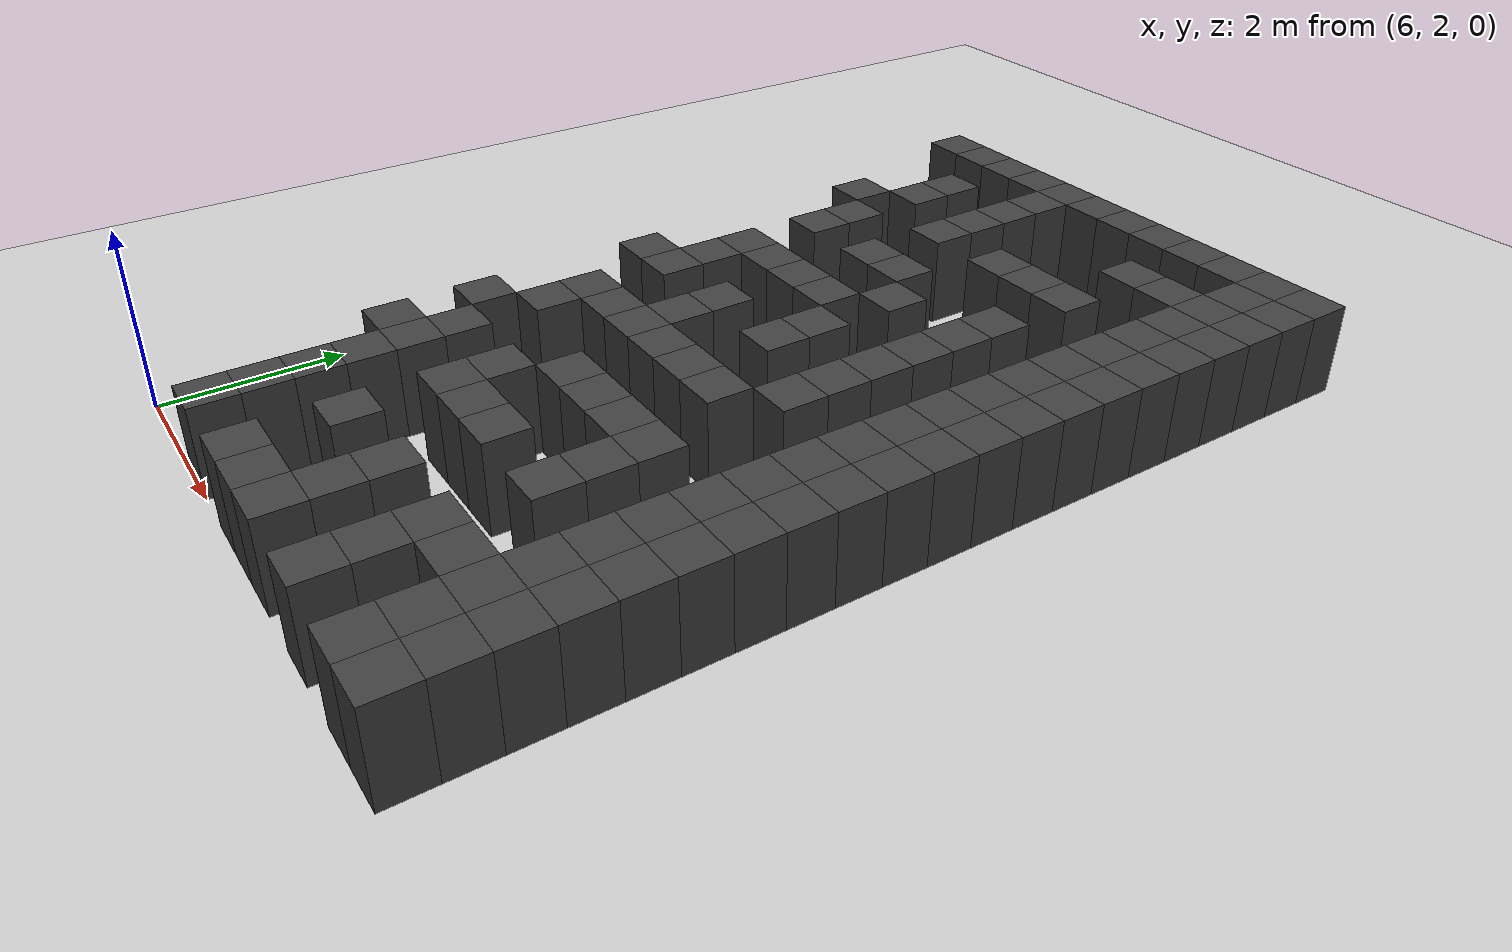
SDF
<sdf version="1.7">
 <world name="map_15293">
  <model name="ground_plane">
   <static>true</static>
   <link name="link">
    <collision name="collision">
     <geometry><plane><normal>0 0 1</normal><size>200 200</size></plane></geometry>
    </collision>
    <visual name="visual">
     <geometry><plane><normal>0 0 1</normal><size>200 200</size></plane></geometry>
     <material><ambient>0.8 0.8 0.8 1</ambient><diffuse>0.8 0.8 0.8 1</diffuse></material>
    </visual>
   </link>
  </model>
  <model name="maze_environment">
   <static>true</static>
   <link name="wall_38">
    <pose>6.750 12.250 0.500 0 0 0</pose>
    <collision name="col"><geometry><box><size>0.5 0.5 1.0</size></box></geometry></collision>
    <visual name="vis">
     <geometry><box><size>0.5 0.5 1.0</size></box></geometry>
     <material><ambient>0.15 0.15 0.15 1</ambient><diffuse>0.25 0.25 0.25 1</diffuse></material>
    </visual>
   </link>
   <link name="wall_39">
    <pose>7.250 12.250 0.500 0 0 0</pose>
    <collision name="col"><geometry><box><size>0.5 0.5 1.0</size></box></geometry></collision>
    <visual name="vis">
     <geometry><box><size>0.5 0.5 1.0</size></box></geometry>
     <material><ambient>0.15 0.15 0.15 1</ambient><diffuse>0.25 0.25 0.25 1</diffuse></material>
    </visual>
   </link>
   <link name="wall_40">
    <pose>7.750 12.250 0.500 0 0 0</pose>
    <collision name="col"><geometry><box><size>0.5 0.5 1.0</size></box></geometry></collision>
    <visual name="vis">
     <geometry><box><size>0.5 0.5 1.0</size></box></geometry>
     <material><ambient>0.15 0.15 0.15 1</ambient><diffuse>0.25 0.25 0.25 1</diffuse></material>
    </visual>
   </link>
   <link name="wall_41">
    <pose>8.250 12.250 0.500 0 0 0</pose>
    <collision name="col"><geometry><box><size>0.5 0.5 1.0</size></box></geometry></collision>
    <visual name="vis">
     <geometry><box><size>0.5 0.5 1.0</size></box></geometry>
     <material><ambient>0.15 0.15 0.15 1</ambient><diffuse>0.25 0.25 0.25 1</diffuse></material>
    </visual>
   </link>
   <link name="wall_42">
    <pose>8.750 12.250 0.500 0 0 0</pose>
    <collision name="col"><geometry><box><size>0.5 0.5 1.0</size></box></geometry></collision>
    <visual name="vis">
     <geometry><box><size>0.5 0.5 1.0</size></box></geometry>
     <material><ambient>0.15 0.15 0.15 1</ambient><diffuse>0.25 0.25 0.25 1</diffuse></material>
    </visual>
   </link>
   <link name="wall_43">
    <pose>9.250 12.250 0.500 0 0 0</pose>
    <collision name="col"><geometry><box><size>0.5 0.5 1.0</size></box></geometry></collision>
    <visual name="vis">
     <geometry><box><size>0.5 0.5 1.0</size></box></geometry>
     <material><ambient>0.15 0.15 0.15 1</ambient><diffuse>0.25 0.25 0.25 1</diffuse></material>
    </visual>
   </link>
   <link name="wall_44">
    <pose>9.750 12.250 0.500 0 0 0</pose>
    <collision name="col"><geometry><box><size>0.5 0.5 1.0</size></box></geometry></collision>
    <visual name="vis">
     <geometry><box><size>0.5 0.5 1.0</size></box></geometry>
     <material><ambient>0.15 0.15 0.15 1</ambient><diffuse>0.25 0.25 0.25 1</diffuse></material>
    </visual>
   </link>
   <link name="wall_45">
    <pose>10.250 12.250 0.500 0 0 0</pose>
    <collision name="col"><geometry><box><size>0.5 0.5 1.0</size></box></geometry></collision>
    <visual name="vis">
     <geometry><box><size>0.5 0.5 1.0</size></box></geometry>
     <material><ambient>0.15 0.15 0.15 1</ambient><diffuse>0.25 0.25 0.25 1</diffuse></material>
    </visual>
   </link>
   <link name="wall_46">
    <pose>10.750 12.250 0.500 0 0 0</pose>
    <collision name="col"><geometry><box><size>0.5 0.5 1.0</size></box></geometry></collision>
    <visual name="vis">
     <geometry><box><size>0.5 0.5 1.0</size></box></geometry>
     <material><ambient>0.15 0.15 0.15 1</ambient><diffuse>0.25 0.25 0.25 1</diffuse></material>
    </visual>
   </link>
   <link name="wall_47">
    <pose>11.250 12.250 0.500 0 0 0</pose>
    <collision name="col"><geometry><box><size>0.5 0.5 1.0</size></box></geometry></collision>
    <visual name="vis">
     <geometry><box><size>0.5 0.5 1.0</size></box></geometry>
     <material><ambient>0.15 0.15 0.15 1</ambient><diffuse>0.25 0.25 0.25 1</diffuse></material>
    </visual>
   </link>
   <link name="wall_48">
    <pose>11.750 12.250 0.500 0 0 0</pose>
    <collision name="col"><geometry><box><size>0.5 0.5 1.0</size></box></geometry></collision>
    <visual name="vis">
     <geometry><box><size>0.5 0.5 1.0</size></box></geometry>
     <material><ambient>0.15 0.15 0.15 1</ambient><diffuse>0.25 0.25 0.25 1</diffuse></material>
    </visual>
   </link>
   <link name="wall_49">
    <pose>12.250 12.250 0.500 0 0 0</pose>
    <collision name="col"><geometry><box><size>0.5 0.5 1.0</size></box></geometry></collision>
    <visual name="vis">
     <geometry><box><size>0.5 0.5 1.0</size></box></geometry>
     <material><ambient>0.15 0.15 0.15 1</ambient><diffuse>0.25 0.25 0.25 1</diffuse></material>
    </visual>
   </link>
   <link name="wall_56">
    <pose>8.750 11.750 0.500 0 0 0</pose>
    <collision name="col"><geometry><box><size>0.5 0.5 1.0</size></box></geometry></collision>
    <visual name="vis">
     <geometry><box><size>0.5 0.5 1.0</size></box></geometry>
     <material><ambient>0.15 0.15 0.15 1</ambient><diffuse>0.25 0.25 0.25 1</diffuse></material>
    </visual>
   </link>
   <link name="wall_57">
    <pose>11.750 11.750 0.500 0 0 0</pose>
    <collision name="col"><geometry><box><size>0.5 0.5 1.0</size></box></geometry></collision>
    <visual name="vis">
     <geometry><box><size>0.5 0.5 1.0</size></box></geometry>
     <material><ambient>0.15 0.15 0.15 1</ambient><diffuse>0.25 0.25 0.25 1</diffuse></material>
    </visual>
   </link>
   <link name="wall_58">
    <pose>12.250 11.750 0.500 0 0 0</pose>
    <collision name="col"><geometry><box><size>0.5 0.5 1.0</size></box></geometry></collision>
    <visual name="vis">
     <geometry><box><size>0.5 0.5 1.0</size></box></geometry>
     <material><ambient>0.15 0.15 0.15 1</ambient><diffuse>0.25 0.25 0.25 1</diffuse></material>
    </visual>
   </link>
   <link name="wall_81">
    <pose>7.750 11.250 0.500 0 0 0</pose>
    <collision name="col"><geometry><box><size>0.5 0.5 1.0</size></box></geometry></collision>
    <visual name="vis">
     <geometry><box><size>0.5 0.5 1.0</size></box></geometry>
     <material><ambient>0.15 0.15 0.15 1</ambient><diffuse>0.25 0.25 0.25 1</diffuse></material>
    </visual>
   </link>
   <link name="wall_82">
    <pose>8.750 11.250 0.500 0 0 0</pose>
    <collision name="col"><geometry><box><size>0.5 0.5 1.0</size></box></geometry></collision>
    <visual name="vis">
     <geometry><box><size>0.5 0.5 1.0</size></box></geometry>
     <material><ambient>0.15 0.15 0.15 1</ambient><diffuse>0.25 0.25 0.25 1</diffuse></material>
    </visual>
   </link>
   <link name="wall_83">
    <pose>10.750 11.250 0.500 0 0 0</pose>
    <collision name="col"><geometry><box><size>0.5 0.5 1.0</size></box></geometry></collision>
    <visual name="vis">
     <geometry><box><size>0.5 0.5 1.0</size></box></geometry>
     <material><ambient>0.15 0.15 0.15 1</ambient><diffuse>0.25 0.25 0.25 1</diffuse></material>
    </visual>
   </link>
   <link name="wall_84">
    <pose>11.250 11.250 0.500 0 0 0</pose>
    <collision name="col"><geometry><box><size>0.5 0.5 1.0</size></box></geometry></collision>
    <visual name="vis">
     <geometry><box><size>0.5 0.5 1.0</size></box></geometry>
     <material><ambient>0.15 0.15 0.15 1</ambient><diffuse>0.25 0.25 0.25 1</diffuse></material>
    </visual>
   </link>
   <link name="wall_85">
    <pose>11.750 11.250 0.500 0 0 0</pose>
    <collision name="col"><geometry><box><size>0.5 0.5 1.0</size></box></geometry></collision>
    <visual name="vis">
     <geometry><box><size>0.5 0.5 1.0</size></box></geometry>
     <material><ambient>0.15 0.15 0.15 1</ambient><diffuse>0.25 0.25 0.25 1</diffuse></material>
    </visual>
   </link>
   <link name="wall_86">
    <pose>12.250 11.250 0.500 0 0 0</pose>
    <collision name="col"><geometry><box><size>0.5 0.5 1.0</size></box></geometry></collision>
    <visual name="vis">
     <geometry><box><size>0.5 0.5 1.0</size></box></geometry>
     <material><ambient>0.15 0.15 0.15 1</ambient><diffuse>0.25 0.25 0.25 1</diffuse></material>
    </visual>
   </link>
   <link name="wall_97">
    <pose>7.750 10.750 0.500 0 0 0</pose>
    <collision name="col"><geometry><box><size>0.5 0.5 1.0</size></box></geometry></collision>
    <visual name="vis">
     <geometry><box><size>0.5 0.5 1.0</size></box></geometry>
     <material><ambient>0.15 0.15 0.15 1</ambient><diffuse>0.25 0.25 0.25 1</diffuse></material>
    </visual>
   </link>
   <link name="wall_98">
    <pose>8.750 10.750 0.500 0 0 0</pose>
    <collision name="col"><geometry><box><size>0.5 0.5 1.0</size></box></geometry></collision>
    <visual name="vis">
     <geometry><box><size>0.5 0.5 1.0</size></box></geometry>
     <material><ambient>0.15 0.15 0.15 1</ambient><diffuse>0.25 0.25 0.25 1</diffuse></material>
    </visual>
   </link>
   <link name="wall_99">
    <pose>11.750 10.750 0.500 0 0 0</pose>
    <collision name="col"><geometry><box><size>0.5 0.5 1.0</size></box></geometry></collision>
    <visual name="vis">
     <geometry><box><size>0.5 0.5 1.0</size></box></geometry>
     <material><ambient>0.15 0.15 0.15 1</ambient><diffuse>0.25 0.25 0.25 1</diffuse></material>
    </visual>
   </link>
   <link name="wall_100">
    <pose>12.250 10.750 0.500 0 0 0</pose>
    <collision name="col"><geometry><box><size>0.5 0.5 1.0</size></box></geometry></collision>
    <visual name="vis">
     <geometry><box><size>0.5 0.5 1.0</size></box></geometry>
     <material><ambient>0.15 0.15 0.15 1</ambient><diffuse>0.25 0.25 0.25 1</diffuse></material>
    </visual>
   </link>
   <link name="wall_127">
    <pose>7.250 10.250 0.500 0 0 0</pose>
    <collision name="col"><geometry><box><size>0.5 0.5 1.0</size></box></geometry></collision>
    <visual name="vis">
     <geometry><box><size>0.5 0.5 1.0</size></box></geometry>
     <material><ambient>0.15 0.15 0.15 1</ambient><diffuse>0.25 0.25 0.25 1</diffuse></material>
    </visual>
   </link>
   <link name="wall_128">
    <pose>8.750 10.250 0.500 0 0 0</pose>
    <collision name="col"><geometry><box><size>0.5 0.5 1.0</size></box></geometry></collision>
    <visual name="vis">
     <geometry><box><size>0.5 0.5 1.0</size></box></geometry>
     <material><ambient>0.15 0.15 0.15 1</ambient><diffuse>0.25 0.25 0.25 1</diffuse></material>
    </visual>
   </link>
   <link name="wall_129">
    <pose>9.750 10.250 0.500 0 0 0</pose>
    <collision name="col"><geometry><box><size>0.5 0.5 1.0</size></box></geometry></collision>
    <visual name="vis">
     <geometry><box><size>0.5 0.5 1.0</size></box></geometry>
     <material><ambient>0.15 0.15 0.15 1</ambient><diffuse>0.25 0.25 0.25 1</diffuse></material>
    </visual>
   </link>
   <link name="wall_130">
    <pose>10.250 10.250 0.500 0 0 0</pose>
    <collision name="col"><geometry><box><size>0.5 0.5 1.0</size></box></geometry></collision>
    <visual name="vis">
     <geometry><box><size>0.5 0.5 1.0</size></box></geometry>
     <material><ambient>0.15 0.15 0.15 1</ambient><diffuse>0.25 0.25 0.25 1</diffuse></material>
    </visual>
   </link>
   <link name="wall_131">
    <pose>10.750 10.250 0.500 0 0 0</pose>
    <collision name="col"><geometry><box><size>0.5 0.5 1.0</size></box></geometry></collision>
    <visual name="vis">
     <geometry><box><size>0.5 0.5 1.0</size></box></geometry>
     <material><ambient>0.15 0.15 0.15 1</ambient><diffuse>0.25 0.25 0.25 1</diffuse></material>
    </visual>
   </link>
   <link name="wall_132">
    <pose>11.750 10.250 0.500 0 0 0</pose>
    <collision name="col"><geometry><box><size>0.5 0.5 1.0</size></box></geometry></collision>
    <visual name="vis">
     <geometry><box><size>0.5 0.5 1.0</size></box></geometry>
     <material><ambient>0.15 0.15 0.15 1</ambient><diffuse>0.25 0.25 0.25 1</diffuse></material>
    </visual>
   </link>
   <link name="wall_133">
    <pose>12.250 10.250 0.500 0 0 0</pose>
    <collision name="col"><geometry><box><size>0.5 0.5 1.0</size></box></geometry></collision>
    <visual name="vis">
     <geometry><box><size>0.5 0.5 1.0</size></box></geometry>
     <material><ambient>0.15 0.15 0.15 1</ambient><diffuse>0.25 0.25 0.25 1</diffuse></material>
    </visual>
   </link>
   <link name="wall_142">
    <pose>7.750 9.750 0.500 0 0 0</pose>
    <collision name="col"><geometry><box><size>0.5 0.5 1.0</size></box></geometry></collision>
    <visual name="vis">
     <geometry><box><size>0.5 0.5 1.0</size></box></geometry>
     <material><ambient>0.15 0.15 0.15 1</ambient><diffuse>0.25 0.25 0.25 1</diffuse></material>
    </visual>
   </link>
   <link name="wall_143">
    <pose>11.750 9.750 0.500 0 0 0</pose>
    <collision name="col"><geometry><box><size>0.5 0.5 1.0</size></box></geometry></collision>
    <visual name="vis">
     <geometry><box><size>0.5 0.5 1.0</size></box></geometry>
     <material><ambient>0.15 0.15 0.15 1</ambient><diffuse>0.25 0.25 0.25 1</diffuse></material>
    </visual>
   </link>
   <link name="wall_144">
    <pose>12.250 9.750 0.500 0 0 0</pose>
    <collision name="col"><geometry><box><size>0.5 0.5 1.0</size></box></geometry></collision>
    <visual name="vis">
     <geometry><box><size>0.5 0.5 1.0</size></box></geometry>
     <material><ambient>0.15 0.15 0.15 1</ambient><diffuse>0.25 0.25 0.25 1</diffuse></material>
    </visual>
   </link>
   <link name="wall_171">
    <pose>7.750 9.250 0.500 0 0 0</pose>
    <collision name="col"><geometry><box><size>0.5 0.5 1.0</size></box></geometry></collision>
    <visual name="vis">
     <geometry><box><size>0.5 0.5 1.0</size></box></geometry>
     <material><ambient>0.15 0.15 0.15 1</ambient><diffuse>0.25 0.25 0.25 1</diffuse></material>
    </visual>
   </link>
   <link name="wall_172">
    <pose>8.750 9.250 0.500 0 0 0</pose>
    <collision name="col"><geometry><box><size>0.5 0.5 1.0</size></box></geometry></collision>
    <visual name="vis">
     <geometry><box><size>0.5 0.5 1.0</size></box></geometry>
     <material><ambient>0.15 0.15 0.15 1</ambient><diffuse>0.25 0.25 0.25 1</diffuse></material>
    </visual>
   </link>
   <link name="wall_173">
    <pose>9.250 9.250 0.500 0 0 0</pose>
    <collision name="col"><geometry><box><size>0.5 0.5 1.0</size></box></geometry></collision>
    <visual name="vis">
     <geometry><box><size>0.5 0.5 1.0</size></box></geometry>
     <material><ambient>0.15 0.15 0.15 1</ambient><diffuse>0.25 0.25 0.25 1</diffuse></material>
    </visual>
   </link>
   <link name="wall_174">
    <pose>10.750 9.250 0.500 0 0 0</pose>
    <collision name="col"><geometry><box><size>0.5 0.5 1.0</size></box></geometry></collision>
    <visual name="vis">
     <geometry><box><size>0.5 0.5 1.0</size></box></geometry>
     <material><ambient>0.15 0.15 0.15 1</ambient><diffuse>0.25 0.25 0.25 1</diffuse></material>
    </visual>
   </link>
   <link name="wall_175">
    <pose>11.750 9.250 0.500 0 0 0</pose>
    <collision name="col"><geometry><box><size>0.5 0.5 1.0</size></box></geometry></collision>
    <visual name="vis">
     <geometry><box><size>0.5 0.5 1.0</size></box></geometry>
     <material><ambient>0.15 0.15 0.15 1</ambient><diffuse>0.25 0.25 0.25 1</diffuse></material>
    </visual>
   </link>
   <link name="wall_176">
    <pose>12.250 9.250 0.500 0 0 0</pose>
    <collision name="col"><geometry><box><size>0.5 0.5 1.0</size></box></geometry></collision>
    <visual name="vis">
     <geometry><box><size>0.5 0.5 1.0</size></box></geometry>
     <material><ambient>0.15 0.15 0.15 1</ambient><diffuse>0.25 0.25 0.25 1</diffuse></material>
    </visual>
   </link>
   <link name="wall_188">
    <pose>9.750 8.750 0.500 0 0 0</pose>
    <collision name="col"><geometry><box><size>0.5 0.5 1.0</size></box></geometry></collision>
    <visual name="vis">
     <geometry><box><size>0.5 0.5 1.0</size></box></geometry>
     <material><ambient>0.15 0.15 0.15 1</ambient><diffuse>0.25 0.25 0.25 1</diffuse></material>
    </visual>
   </link>
   <link name="wall_189">
    <pose>10.750 8.750 0.500 0 0 0</pose>
    <collision name="col"><geometry><box><size>0.5 0.5 1.0</size></box></geometry></collision>
    <visual name="vis">
     <geometry><box><size>0.5 0.5 1.0</size></box></geometry>
     <material><ambient>0.15 0.15 0.15 1</ambient><diffuse>0.25 0.25 0.25 1</diffuse></material>
    </visual>
   </link>
   <link name="wall_190">
    <pose>11.750 8.750 0.500 0 0 0</pose>
    <collision name="col"><geometry><box><size>0.5 0.5 1.0</size></box></geometry></collision>
    <visual name="vis">
     <geometry><box><size>0.5 0.5 1.0</size></box></geometry>
     <material><ambient>0.15 0.15 0.15 1</ambient><diffuse>0.25 0.25 0.25 1</diffuse></material>
    </visual>
   </link>
   <link name="wall_191">
    <pose>12.250 8.750 0.500 0 0 0</pose>
    <collision name="col"><geometry><box><size>0.5 0.5 1.0</size></box></geometry></collision>
    <visual name="vis">
     <geometry><box><size>0.5 0.5 1.0</size></box></geometry>
     <material><ambient>0.15 0.15 0.15 1</ambient><diffuse>0.25 0.25 0.25 1</diffuse></material>
    </visual>
   </link>
   <link name="wall_216">
    <pose>7.750 8.250 0.500 0 0 0</pose>
    <collision name="col"><geometry><box><size>0.5 0.5 1.0</size></box></geometry></collision>
    <visual name="vis">
     <geometry><box><size>0.5 0.5 1.0</size></box></geometry>
     <material><ambient>0.15 0.15 0.15 1</ambient><diffuse>0.25 0.25 0.25 1</diffuse></material>
    </visual>
   </link>
   <link name="wall_217">
    <pose>8.250 8.250 0.500 0 0 0</pose>
    <collision name="col"><geometry><box><size>0.5 0.5 1.0</size></box></geometry></collision>
    <visual name="vis">
     <geometry><box><size>0.5 0.5 1.0</size></box></geometry>
     <material><ambient>0.15 0.15 0.15 1</ambient><diffuse>0.25 0.25 0.25 1</diffuse></material>
    </visual>
   </link>
   <link name="wall_218">
    <pose>8.750 8.250 0.500 0 0 0</pose>
    <collision name="col"><geometry><box><size>0.5 0.5 1.0</size></box></geometry></collision>
    <visual name="vis">
     <geometry><box><size>0.5 0.5 1.0</size></box></geometry>
     <material><ambient>0.15 0.15 0.15 1</ambient><diffuse>0.25 0.25 0.25 1</diffuse></material>
    </visual>
   </link>
   <link name="wall_219">
    <pose>9.250 8.250 0.500 0 0 0</pose>
    <collision name="col"><geometry><box><size>0.5 0.5 1.0</size></box></geometry></collision>
    <visual name="vis">
     <geometry><box><size>0.5 0.5 1.0</size></box></geometry>
     <material><ambient>0.15 0.15 0.15 1</ambient><diffuse>0.25 0.25 0.25 1</diffuse></material>
    </visual>
   </link>
   <link name="wall_220">
    <pose>10.750 8.250 0.500 0 0 0</pose>
    <collision name="col"><geometry><box><size>0.5 0.5 1.0</size></box></geometry></collision>
    <visual name="vis">
     <geometry><box><size>0.5 0.5 1.0</size></box></geometry>
     <material><ambient>0.15 0.15 0.15 1</ambient><diffuse>0.25 0.25 0.25 1</diffuse></material>
    </visual>
   </link>
   <link name="wall_221">
    <pose>11.750 8.250 0.500 0 0 0</pose>
    <collision name="col"><geometry><box><size>0.5 0.5 1.0</size></box></geometry></collision>
    <visual name="vis">
     <geometry><box><size>0.5 0.5 1.0</size></box></geometry>
     <material><ambient>0.15 0.15 0.15 1</ambient><diffuse>0.25 0.25 0.25 1</diffuse></material>
    </visual>
   </link>
   <link name="wall_222">
    <pose>12.250 8.250 0.500 0 0 0</pose>
    <collision name="col"><geometry><box><size>0.5 0.5 1.0</size></box></geometry></collision>
    <visual name="vis">
     <geometry><box><size>0.5 0.5 1.0</size></box></geometry>
     <material><ambient>0.15 0.15 0.15 1</ambient><diffuse>0.25 0.25 0.25 1</diffuse></material>
    </visual>
   </link>
   <link name="wall_234">
    <pose>7.750 7.750 0.500 0 0 0</pose>
    <collision name="col"><geometry><box><size>0.5 0.5 1.0</size></box></geometry></collision>
    <visual name="vis">
     <geometry><box><size>0.5 0.5 1.0</size></box></geometry>
     <material><ambient>0.15 0.15 0.15 1</ambient><diffuse>0.25 0.25 0.25 1</diffuse></material>
    </visual>
   </link>
   <link name="wall_235">
    <pose>9.750 7.750 0.500 0 0 0</pose>
    <collision name="col"><geometry><box><size>0.5 0.5 1.0</size></box></geometry></collision>
    <visual name="vis">
     <geometry><box><size>0.5 0.5 1.0</size></box></geometry>
     <material><ambient>0.15 0.15 0.15 1</ambient><diffuse>0.25 0.25 0.25 1</diffuse></material>
    </visual>
   </link>
   <link name="wall_236">
    <pose>10.750 7.750 0.500 0 0 0</pose>
    <collision name="col"><geometry><box><size>0.5 0.5 1.0</size></box></geometry></collision>
    <visual name="vis">
     <geometry><box><size>0.5 0.5 1.0</size></box></geometry>
     <material><ambient>0.15 0.15 0.15 1</ambient><diffuse>0.25 0.25 0.25 1</diffuse></material>
    </visual>
   </link>
   <link name="wall_237">
    <pose>11.750 7.750 0.500 0 0 0</pose>
    <collision name="col"><geometry><box><size>0.5 0.5 1.0</size></box></geometry></collision>
    <visual name="vis">
     <geometry><box><size>0.5 0.5 1.0</size></box></geometry>
     <material><ambient>0.15 0.15 0.15 1</ambient><diffuse>0.25 0.25 0.25 1</diffuse></material>
    </visual>
   </link>
   <link name="wall_238">
    <pose>12.250 7.750 0.500 0 0 0</pose>
    <collision name="col"><geometry><box><size>0.5 0.5 1.0</size></box></geometry></collision>
    <visual name="vis">
     <geometry><box><size>0.5 0.5 1.0</size></box></geometry>
     <material><ambient>0.15 0.15 0.15 1</ambient><diffuse>0.25 0.25 0.25 1</diffuse></material>
    </visual>
   </link>
   <link name="wall_262">
    <pose>7.250 7.250 0.500 0 0 0</pose>
    <collision name="col"><geometry><box><size>0.5 0.5 1.0</size></box></geometry></collision>
    <visual name="vis">
     <geometry><box><size>0.5 0.5 1.0</size></box></geometry>
     <material><ambient>0.15 0.15 0.15 1</ambient><diffuse>0.25 0.25 0.25 1</diffuse></material>
    </visual>
   </link>
   <link name="wall_263">
    <pose>7.750 7.250 0.500 0 0 0</pose>
    <collision name="col"><geometry><box><size>0.5 0.5 1.0</size></box></geometry></collision>
    <visual name="vis">
     <geometry><box><size>0.5 0.5 1.0</size></box></geometry>
     <material><ambient>0.15 0.15 0.15 1</ambient><diffuse>0.25 0.25 0.25 1</diffuse></material>
    </visual>
   </link>
   <link name="wall_264">
    <pose>8.750 7.250 0.500 0 0 0</pose>
    <collision name="col"><geometry><box><size>0.5 0.5 1.0</size></box></geometry></collision>
    <visual name="vis">
     <geometry><box><size>0.5 0.5 1.0</size></box></geometry>
     <material><ambient>0.15 0.15 0.15 1</ambient><diffuse>0.25 0.25 0.25 1</diffuse></material>
    </visual>
   </link>
   <link name="wall_265">
    <pose>9.750 7.250 0.500 0 0 0</pose>
    <collision name="col"><geometry><box><size>0.5 0.5 1.0</size></box></geometry></collision>
    <visual name="vis">
     <geometry><box><size>0.5 0.5 1.0</size></box></geometry>
     <material><ambient>0.15 0.15 0.15 1</ambient><diffuse>0.25 0.25 0.25 1</diffuse></material>
    </visual>
   </link>
   <link name="wall_266">
    <pose>10.750 7.250 0.500 0 0 0</pose>
    <collision name="col"><geometry><box><size>0.5 0.5 1.0</size></box></geometry></collision>
    <visual name="vis">
     <geometry><box><size>0.5 0.5 1.0</size></box></geometry>
     <material><ambient>0.15 0.15 0.15 1</ambient><diffuse>0.25 0.25 0.25 1</diffuse></material>
    </visual>
   </link>
   <link name="wall_267">
    <pose>11.750 7.250 0.500 0 0 0</pose>
    <collision name="col"><geometry><box><size>0.5 0.5 1.0</size></box></geometry></collision>
    <visual name="vis">
     <geometry><box><size>0.5 0.5 1.0</size></box></geometry>
     <material><ambient>0.15 0.15 0.15 1</ambient><diffuse>0.25 0.25 0.25 1</diffuse></material>
    </visual>
   </link>
   <link name="wall_268">
    <pose>12.250 7.250 0.500 0 0 0</pose>
    <collision name="col"><geometry><box><size>0.5 0.5 1.0</size></box></geometry></collision>
    <visual name="vis">
     <geometry><box><size>0.5 0.5 1.0</size></box></geometry>
     <material><ambient>0.15 0.15 0.15 1</ambient><diffuse>0.25 0.25 0.25 1</diffuse></material>
    </visual>
   </link>
   <link name="wall_279">
    <pose>8.750 6.750 0.500 0 0 0</pose>
    <collision name="col"><geometry><box><size>0.5 0.5 1.0</size></box></geometry></collision>
    <visual name="vis">
     <geometry><box><size>0.5 0.5 1.0</size></box></geometry>
     <material><ambient>0.15 0.15 0.15 1</ambient><diffuse>0.25 0.25 0.25 1</diffuse></material>
    </visual>
   </link>
   <link name="wall_280">
    <pose>10.750 6.750 0.500 0 0 0</pose>
    <collision name="col"><geometry><box><size>0.5 0.5 1.0</size></box></geometry></collision>
    <visual name="vis">
     <geometry><box><size>0.5 0.5 1.0</size></box></geometry>
     <material><ambient>0.15 0.15 0.15 1</ambient><diffuse>0.25 0.25 0.25 1</diffuse></material>
    </visual>
   </link>
   <link name="wall_281">
    <pose>11.750 6.750 0.500 0 0 0</pose>
    <collision name="col"><geometry><box><size>0.5 0.5 1.0</size></box></geometry></collision>
    <visual name="vis">
     <geometry><box><size>0.5 0.5 1.0</size></box></geometry>
     <material><ambient>0.15 0.15 0.15 1</ambient><diffuse>0.25 0.25 0.25 1</diffuse></material>
    </visual>
   </link>
   <link name="wall_282">
    <pose>12.250 6.750 0.500 0 0 0</pose>
    <collision name="col"><geometry><box><size>0.5 0.5 1.0</size></box></geometry></collision>
    <visual name="vis">
     <geometry><box><size>0.5 0.5 1.0</size></box></geometry>
     <material><ambient>0.15 0.15 0.15 1</ambient><diffuse>0.25 0.25 0.25 1</diffuse></material>
    </visual>
   </link>
   <link name="wall_310">
    <pose>7.750 6.250 0.500 0 0 0</pose>
    <collision name="col"><geometry><box><size>0.5 0.5 1.0</size></box></geometry></collision>
    <visual name="vis">
     <geometry><box><size>0.5 0.5 1.0</size></box></geometry>
     <material><ambient>0.15 0.15 0.15 1</ambient><diffuse>0.25 0.25 0.25 1</diffuse></material>
    </visual>
   </link>
   <link name="wall_311">
    <pose>8.250 6.250 0.500 0 0 0</pose>
    <collision name="col"><geometry><box><size>0.5 0.5 1.0</size></box></geometry></collision>
    <visual name="vis">
     <geometry><box><size>0.5 0.5 1.0</size></box></geometry>
     <material><ambient>0.15 0.15 0.15 1</ambient><diffuse>0.25 0.25 0.25 1</diffuse></material>
    </visual>
   </link>
   <link name="wall_312">
    <pose>8.750 6.250 0.500 0 0 0</pose>
    <collision name="col"><geometry><box><size>0.5 0.5 1.0</size></box></geometry></collision>
    <visual name="vis">
     <geometry><box><size>0.5 0.5 1.0</size></box></geometry>
     <material><ambient>0.15 0.15 0.15 1</ambient><diffuse>0.25 0.25 0.25 1</diffuse></material>
    </visual>
   </link>
   <link name="wall_313">
    <pose>9.250 6.250 0.500 0 0 0</pose>
    <collision name="col"><geometry><box><size>0.5 0.5 1.0</size></box></geometry></collision>
    <visual name="vis">
     <geometry><box><size>0.5 0.5 1.0</size></box></geometry>
     <material><ambient>0.15 0.15 0.15 1</ambient><diffuse>0.25 0.25 0.25 1</diffuse></material>
    </visual>
   </link>
   <link name="wall_314">
    <pose>9.750 6.250 0.500 0 0 0</pose>
    <collision name="col"><geometry><box><size>0.5 0.5 1.0</size></box></geometry></collision>
    <visual name="vis">
     <geometry><box><size>0.5 0.5 1.0</size></box></geometry>
     <material><ambient>0.15 0.15 0.15 1</ambient><diffuse>0.25 0.25 0.25 1</diffuse></material>
    </visual>
   </link>
   <link name="wall_315">
    <pose>10.250 6.250 0.500 0 0 0</pose>
    <collision name="col"><geometry><box><size>0.5 0.5 1.0</size></box></geometry></collision>
    <visual name="vis">
     <geometry><box><size>0.5 0.5 1.0</size></box></geometry>
     <material><ambient>0.15 0.15 0.15 1</ambient><diffuse>0.25 0.25 0.25 1</diffuse></material>
    </visual>
   </link>
   <link name="wall_316">
    <pose>11.750 6.250 0.500 0 0 0</pose>
    <collision name="col"><geometry><box><size>0.5 0.5 1.0</size></box></geometry></collision>
    <visual name="vis">
     <geometry><box><size>0.5 0.5 1.0</size></box></geometry>
     <material><ambient>0.15 0.15 0.15 1</ambient><diffuse>0.25 0.25 0.25 1</diffuse></material>
    </visual>
   </link>
   <link name="wall_317">
    <pose>12.250 6.250 0.500 0 0 0</pose>
    <collision name="col"><geometry><box><size>0.5 0.5 1.0</size></box></geometry></collision>
    <visual name="vis">
     <geometry><box><size>0.5 0.5 1.0</size></box></geometry>
     <material><ambient>0.15 0.15 0.15 1</ambient><diffuse>0.25 0.25 0.25 1</diffuse></material>
    </visual>
   </link>
   <link name="wall_325">
    <pose>7.750 5.750 0.500 0 0 0</pose>
    <collision name="col"><geometry><box><size>0.5 0.5 1.0</size></box></geometry></collision>
    <visual name="vis">
     <geometry><box><size>0.5 0.5 1.0</size></box></geometry>
     <material><ambient>0.15 0.15 0.15 1</ambient><diffuse>0.25 0.25 0.25 1</diffuse></material>
    </visual>
   </link>
   <link name="wall_326">
    <pose>11.750 5.750 0.500 0 0 0</pose>
    <collision name="col"><geometry><box><size>0.5 0.5 1.0</size></box></geometry></collision>
    <visual name="vis">
     <geometry><box><size>0.5 0.5 1.0</size></box></geometry>
     <material><ambient>0.15 0.15 0.15 1</ambient><diffuse>0.25 0.25 0.25 1</diffuse></material>
    </visual>
   </link>
   <link name="wall_327">
    <pose>12.250 5.750 0.500 0 0 0</pose>
    <collision name="col"><geometry><box><size>0.5 0.5 1.0</size></box></geometry></collision>
    <visual name="vis">
     <geometry><box><size>0.5 0.5 1.0</size></box></geometry>
     <material><ambient>0.15 0.15 0.15 1</ambient><diffuse>0.25 0.25 0.25 1</diffuse></material>
    </visual>
   </link>
   <link name="wall_356">
    <pose>7.250 5.250 0.500 0 0 0</pose>
    <collision name="col"><geometry><box><size>0.5 0.5 1.0</size></box></geometry></collision>
    <visual name="vis">
     <geometry><box><size>0.5 0.5 1.0</size></box></geometry>
     <material><ambient>0.15 0.15 0.15 1</ambient><diffuse>0.25 0.25 0.25 1</diffuse></material>
    </visual>
   </link>
   <link name="wall_357">
    <pose>9.250 5.250 0.500 0 0 0</pose>
    <collision name="col"><geometry><box><size>0.5 0.5 1.0</size></box></geometry></collision>
    <visual name="vis">
     <geometry><box><size>0.5 0.5 1.0</size></box></geometry>
     <material><ambient>0.15 0.15 0.15 1</ambient><diffuse>0.25 0.25 0.25 1</diffuse></material>
    </visual>
   </link>
   <link name="wall_358">
    <pose>9.750 5.250 0.500 0 0 0</pose>
    <collision name="col"><geometry><box><size>0.5 0.5 1.0</size></box></geometry></collision>
    <visual name="vis">
     <geometry><box><size>0.5 0.5 1.0</size></box></geometry>
     <material><ambient>0.15 0.15 0.15 1</ambient><diffuse>0.25 0.25 0.25 1</diffuse></material>
    </visual>
   </link>
   <link name="wall_359">
    <pose>10.250 5.250 0.500 0 0 0</pose>
    <collision name="col"><geometry><box><size>0.5 0.5 1.0</size></box></geometry></collision>
    <visual name="vis">
     <geometry><box><size>0.5 0.5 1.0</size></box></geometry>
     <material><ambient>0.15 0.15 0.15 1</ambient><diffuse>0.25 0.25 0.25 1</diffuse></material>
    </visual>
   </link>
   <link name="wall_360">
    <pose>10.750 5.250 0.500 0 0 0</pose>
    <collision name="col"><geometry><box><size>0.5 0.5 1.0</size></box></geometry></collision>
    <visual name="vis">
     <geometry><box><size>0.5 0.5 1.0</size></box></geometry>
     <material><ambient>0.15 0.15 0.15 1</ambient><diffuse>0.25 0.25 0.25 1</diffuse></material>
    </visual>
   </link>
   <link name="wall_361">
    <pose>11.750 5.250 0.500 0 0 0</pose>
    <collision name="col"><geometry><box><size>0.5 0.5 1.0</size></box></geometry></collision>
    <visual name="vis">
     <geometry><box><size>0.5 0.5 1.0</size></box></geometry>
     <material><ambient>0.15 0.15 0.15 1</ambient><diffuse>0.25 0.25 0.25 1</diffuse></material>
    </visual>
   </link>
   <link name="wall_362">
    <pose>12.250 5.250 0.500 0 0 0</pose>
    <collision name="col"><geometry><box><size>0.5 0.5 1.0</size></box></geometry></collision>
    <visual name="vis">
     <geometry><box><size>0.5 0.5 1.0</size></box></geometry>
     <material><ambient>0.15 0.15 0.15 1</ambient><diffuse>0.25 0.25 0.25 1</diffuse></material>
    </visual>
   </link>
   <link name="wall_371">
    <pose>7.750 4.750 0.500 0 0 0</pose>
    <collision name="col"><geometry><box><size>0.5 0.5 1.0</size></box></geometry></collision>
    <visual name="vis">
     <geometry><box><size>0.5 0.5 1.0</size></box></geometry>
     <material><ambient>0.15 0.15 0.15 1</ambient><diffuse>0.25 0.25 0.25 1</diffuse></material>
    </visual>
   </link>
   <link name="wall_372">
    <pose>8.750 4.750 0.500 0 0 0</pose>
    <collision name="col"><geometry><box><size>0.5 0.5 1.0</size></box></geometry></collision>
    <visual name="vis">
     <geometry><box><size>0.5 0.5 1.0</size></box></geometry>
     <material><ambient>0.15 0.15 0.15 1</ambient><diffuse>0.25 0.25 0.25 1</diffuse></material>
    </visual>
   </link>
   <link name="wall_373">
    <pose>10.750 4.750 0.500 0 0 0</pose>
    <collision name="col"><geometry><box><size>0.5 0.5 1.0</size></box></geometry></collision>
    <visual name="vis">
     <geometry><box><size>0.5 0.5 1.0</size></box></geometry>
     <material><ambient>0.15 0.15 0.15 1</ambient><diffuse>0.25 0.25 0.25 1</diffuse></material>
    </visual>
   </link>
   <link name="wall_374">
    <pose>11.750 4.750 0.500 0 0 0</pose>
    <collision name="col"><geometry><box><size>0.5 0.5 1.0</size></box></geometry></collision>
    <visual name="vis">
     <geometry><box><size>0.5 0.5 1.0</size></box></geometry>
     <material><ambient>0.15 0.15 0.15 1</ambient><diffuse>0.25 0.25 0.25 1</diffuse></material>
    </visual>
   </link>
   <link name="wall_375">
    <pose>12.250 4.750 0.500 0 0 0</pose>
    <collision name="col"><geometry><box><size>0.5 0.5 1.0</size></box></geometry></collision>
    <visual name="vis">
     <geometry><box><size>0.5 0.5 1.0</size></box></geometry>
     <material><ambient>0.15 0.15 0.15 1</ambient><diffuse>0.25 0.25 0.25 1</diffuse></material>
    </visual>
   </link>
   <link name="wall_403">
    <pose>7.250 4.250 0.500 0 0 0</pose>
    <collision name="col"><geometry><box><size>0.5 0.5 1.0</size></box></geometry></collision>
    <visual name="vis">
     <geometry><box><size>0.5 0.5 1.0</size></box></geometry>
     <material><ambient>0.15 0.15 0.15 1</ambient><diffuse>0.25 0.25 0.25 1</diffuse></material>
    </visual>
   </link>
   <link name="wall_404">
    <pose>7.750 4.250 0.500 0 0 0</pose>
    <collision name="col"><geometry><box><size>0.5 0.5 1.0</size></box></geometry></collision>
    <visual name="vis">
     <geometry><box><size>0.5 0.5 1.0</size></box></geometry>
     <material><ambient>0.15 0.15 0.15 1</ambient><diffuse>0.25 0.25 0.25 1</diffuse></material>
    </visual>
   </link>
   <link name="wall_405">
    <pose>8.750 4.250 0.500 0 0 0</pose>
    <collision name="col"><geometry><box><size>0.5 0.5 1.0</size></box></geometry></collision>
    <visual name="vis">
     <geometry><box><size>0.5 0.5 1.0</size></box></geometry>
     <material><ambient>0.15 0.15 0.15 1</ambient><diffuse>0.25 0.25 0.25 1</diffuse></material>
    </visual>
   </link>
   <link name="wall_406">
    <pose>9.250 4.250 0.500 0 0 0</pose>
    <collision name="col"><geometry><box><size>0.5 0.5 1.0</size></box></geometry></collision>
    <visual name="vis">
     <geometry><box><size>0.5 0.5 1.0</size></box></geometry>
     <material><ambient>0.15 0.15 0.15 1</ambient><diffuse>0.25 0.25 0.25 1</diffuse></material>
    </visual>
   </link>
   <link name="wall_407">
    <pose>9.750 4.250 0.500 0 0 0</pose>
    <collision name="col"><geometry><box><size>0.5 0.5 1.0</size></box></geometry></collision>
    <visual name="vis">
     <geometry><box><size>0.5 0.5 1.0</size></box></geometry>
     <material><ambient>0.15 0.15 0.15 1</ambient><diffuse>0.25 0.25 0.25 1</diffuse></material>
    </visual>
   </link>
   <link name="wall_408">
    <pose>10.750 4.250 0.500 0 0 0</pose>
    <collision name="col"><geometry><box><size>0.5 0.5 1.0</size></box></geometry></collision>
    <visual name="vis">
     <geometry><box><size>0.5 0.5 1.0</size></box></geometry>
     <material><ambient>0.15 0.15 0.15 1</ambient><diffuse>0.25 0.25 0.25 1</diffuse></material>
    </visual>
   </link>
   <link name="wall_409">
    <pose>11.750 4.250 0.500 0 0 0</pose>
    <collision name="col"><geometry><box><size>0.5 0.5 1.0</size></box></geometry></collision>
    <visual name="vis">
     <geometry><box><size>0.5 0.5 1.0</size></box></geometry>
     <material><ambient>0.15 0.15 0.15 1</ambient><diffuse>0.25 0.25 0.25 1</diffuse></material>
    </visual>
   </link>
   <link name="wall_410">
    <pose>12.250 4.250 0.500 0 0 0</pose>
    <collision name="col"><geometry><box><size>0.5 0.5 1.0</size></box></geometry></collision>
    <visual name="vis">
     <geometry><box><size>0.5 0.5 1.0</size></box></geometry>
     <material><ambient>0.15 0.15 0.15 1</ambient><diffuse>0.25 0.25 0.25 1</diffuse></material>
    </visual>
   </link>
   <link name="wall_416">
    <pose>7.750 3.750 0.500 0 0 0</pose>
    <collision name="col"><geometry><box><size>0.5 0.5 1.0</size></box></geometry></collision>
    <visual name="vis">
     <geometry><box><size>0.5 0.5 1.0</size></box></geometry>
     <material><ambient>0.15 0.15 0.15 1</ambient><diffuse>0.25 0.25 0.25 1</diffuse></material>
    </visual>
   </link>
   <link name="wall_417">
    <pose>11.750 3.750 0.500 0 0 0</pose>
    <collision name="col"><geometry><box><size>0.5 0.5 1.0</size></box></geometry></collision>
    <visual name="vis">
     <geometry><box><size>0.5 0.5 1.0</size></box></geometry>
     <material><ambient>0.15 0.15 0.15 1</ambient><diffuse>0.25 0.25 0.25 1</diffuse></material>
    </visual>
   </link>
   <link name="wall_418">
    <pose>12.250 3.750 0.500 0 0 0</pose>
    <collision name="col"><geometry><box><size>0.5 0.5 1.0</size></box></geometry></collision>
    <visual name="vis">
     <geometry><box><size>0.5 0.5 1.0</size></box></geometry>
     <material><ambient>0.15 0.15 0.15 1</ambient><diffuse>0.25 0.25 0.25 1</diffuse></material>
    </visual>
   </link>
   <link name="wall_450">
    <pose>7.750 3.250 0.500 0 0 0</pose>
    <collision name="col"><geometry><box><size>0.5 0.5 1.0</size></box></geometry></collision>
    <visual name="vis">
     <geometry><box><size>0.5 0.5 1.0</size></box></geometry>
     <material><ambient>0.15 0.15 0.15 1</ambient><diffuse>0.25 0.25 0.25 1</diffuse></material>
    </visual>
   </link>
   <link name="wall_451">
    <pose>8.750 3.250 0.500 0 0 0</pose>
    <collision name="col"><geometry><box><size>0.5 0.5 1.0</size></box></geometry></collision>
    <visual name="vis">
     <geometry><box><size>0.5 0.5 1.0</size></box></geometry>
     <material><ambient>0.15 0.15 0.15 1</ambient><diffuse>0.25 0.25 0.25 1</diffuse></material>
    </visual>
   </link>
   <link name="wall_452">
    <pose>9.750 3.250 0.500 0 0 0</pose>
    <collision name="col"><geometry><box><size>0.5 0.5 1.0</size></box></geometry></collision>
    <visual name="vis">
     <geometry><box><size>0.5 0.5 1.0</size></box></geometry>
     <material><ambient>0.15 0.15 0.15 1</ambient><diffuse>0.25 0.25 0.25 1</diffuse></material>
    </visual>
   </link>
   <link name="wall_453">
    <pose>10.750 3.250 0.500 0 0 0</pose>
    <collision name="col"><geometry><box><size>0.5 0.5 1.0</size></box></geometry></collision>
    <visual name="vis">
     <geometry><box><size>0.5 0.5 1.0</size></box></geometry>
     <material><ambient>0.15 0.15 0.15 1</ambient><diffuse>0.25 0.25 0.25 1</diffuse></material>
    </visual>
   </link>
   <link name="wall_454">
    <pose>11.250 3.250 0.500 0 0 0</pose>
    <collision name="col"><geometry><box><size>0.5 0.5 1.0</size></box></geometry></collision>
    <visual name="vis">
     <geometry><box><size>0.5 0.5 1.0</size></box></geometry>
     <material><ambient>0.15 0.15 0.15 1</ambient><diffuse>0.25 0.25 0.25 1</diffuse></material>
    </visual>
   </link>
   <link name="wall_455">
    <pose>11.750 3.250 0.500 0 0 0</pose>
    <collision name="col"><geometry><box><size>0.5 0.5 1.0</size></box></geometry></collision>
    <visual name="vis">
     <geometry><box><size>0.5 0.5 1.0</size></box></geometry>
     <material><ambient>0.15 0.15 0.15 1</ambient><diffuse>0.25 0.25 0.25 1</diffuse></material>
    </visual>
   </link>
   <link name="wall_456">
    <pose>12.250 3.250 0.500 0 0 0</pose>
    <collision name="col"><geometry><box><size>0.5 0.5 1.0</size></box></geometry></collision>
    <visual name="vis">
     <geometry><box><size>0.5 0.5 1.0</size></box></geometry>
     <material><ambient>0.15 0.15 0.15 1</ambient><diffuse>0.25 0.25 0.25 1</diffuse></material>
    </visual>
   </link>
   <link name="wall_464">
    <pose>7.750 2.750 0.500 0 0 0</pose>
    <collision name="col"><geometry><box><size>0.5 0.5 1.0</size></box></geometry></collision>
    <visual name="vis">
     <geometry><box><size>0.5 0.5 1.0</size></box></geometry>
     <material><ambient>0.15 0.15 0.15 1</ambient><diffuse>0.25 0.25 0.25 1</diffuse></material>
    </visual>
   </link>
   <link name="wall_465">
    <pose>9.750 2.750 0.500 0 0 0</pose>
    <collision name="col"><geometry><box><size>0.5 0.5 1.0</size></box></geometry></collision>
    <visual name="vis">
     <geometry><box><size>0.5 0.5 1.0</size></box></geometry>
     <material><ambient>0.15 0.15 0.15 1</ambient><diffuse>0.25 0.25 0.25 1</diffuse></material>
    </visual>
   </link>
   <link name="wall_466">
    <pose>10.750 2.750 0.500 0 0 0</pose>
    <collision name="col"><geometry><box><size>0.5 0.5 1.0</size></box></geometry></collision>
    <visual name="vis">
     <geometry><box><size>0.5 0.5 1.0</size></box></geometry>
     <material><ambient>0.15 0.15 0.15 1</ambient><diffuse>0.25 0.25 0.25 1</diffuse></material>
    </visual>
   </link>
   <link name="wall_467">
    <pose>11.750 2.750 0.500 0 0 0</pose>
    <collision name="col"><geometry><box><size>0.5 0.5 1.0</size></box></geometry></collision>
    <visual name="vis">
     <geometry><box><size>0.5 0.5 1.0</size></box></geometry>
     <material><ambient>0.15 0.15 0.15 1</ambient><diffuse>0.25 0.25 0.25 1</diffuse></material>
    </visual>
   </link>
   <link name="wall_468">
    <pose>12.250 2.750 0.500 0 0 0</pose>
    <collision name="col"><geometry><box><size>0.5 0.5 1.0</size></box></geometry></collision>
    <visual name="vis">
     <geometry><box><size>0.5 0.5 1.0</size></box></geometry>
     <material><ambient>0.15 0.15 0.15 1</ambient><diffuse>0.25 0.25 0.25 1</diffuse></material>
    </visual>
   </link>
   <link name="wall_499">
    <pose>7.750 2.250 0.500 0 0 0</pose>
    <collision name="col"><geometry><box><size>0.5 0.5 1.0</size></box></geometry></collision>
    <visual name="vis">
     <geometry><box><size>0.5 0.5 1.0</size></box></geometry>
     <material><ambient>0.15 0.15 0.15 1</ambient><diffuse>0.25 0.25 0.25 1</diffuse></material>
    </visual>
   </link>
   <link name="wall_500">
    <pose>8.750 2.250 0.500 0 0 0</pose>
    <collision name="col"><geometry><box><size>0.5 0.5 1.0</size></box></geometry></collision>
    <visual name="vis">
     <geometry><box><size>0.5 0.5 1.0</size></box></geometry>
     <material><ambient>0.15 0.15 0.15 1</ambient><diffuse>0.25 0.25 0.25 1</diffuse></material>
    </visual>
   </link>
   <link name="wall_501">
    <pose>9.250 2.250 0.500 0 0 0</pose>
    <collision name="col"><geometry><box><size>0.5 0.5 1.0</size></box></geometry></collision>
    <visual name="vis">
     <geometry><box><size>0.5 0.5 1.0</size></box></geometry>
     <material><ambient>0.15 0.15 0.15 1</ambient><diffuse>0.25 0.25 0.25 1</diffuse></material>
    </visual>
   </link>
   <link name="wall_502">
    <pose>9.750 2.250 0.500 0 0 0</pose>
    <collision name="col"><geometry><box><size>0.5 0.5 1.0</size></box></geometry></collision>
    <visual name="vis">
     <geometry><box><size>0.5 0.5 1.0</size></box></geometry>
     <material><ambient>0.15 0.15 0.15 1</ambient><diffuse>0.25 0.25 0.25 1</diffuse></material>
    </visual>
   </link>
   <link name="wall_503">
    <pose>10.750 2.250 0.500 0 0 0</pose>
    <collision name="col"><geometry><box><size>0.5 0.5 1.0</size></box></geometry></collision>
    <visual name="vis">
     <geometry><box><size>0.5 0.5 1.0</size></box></geometry>
     <material><ambient>0.15 0.15 0.15 1</ambient><diffuse>0.25 0.25 0.25 1</diffuse></material>
    </visual>
   </link>
   <link name="wall_504">
    <pose>11.750 2.250 0.500 0 0 0</pose>
    <collision name="col"><geometry><box><size>0.5 0.5 1.0</size></box></geometry></collision>
    <visual name="vis">
     <geometry><box><size>0.5 0.5 1.0</size></box></geometry>
     <material><ambient>0.15 0.15 0.15 1</ambient><diffuse>0.25 0.25 0.25 1</diffuse></material>
    </visual>
   </link>
   <link name="wall_505">
    <pose>12.250 2.250 0.500 0 0 0</pose>
    <collision name="col"><geometry><box><size>0.5 0.5 1.0</size></box></geometry></collision>
    <visual name="vis">
     <geometry><box><size>0.5 0.5 1.0</size></box></geometry>
     <material><ambient>0.15 0.15 0.15 1</ambient><diffuse>0.25 0.25 0.25 1</diffuse></material>
    </visual>
   </link>
  </model>
 </world>
</sdf>
